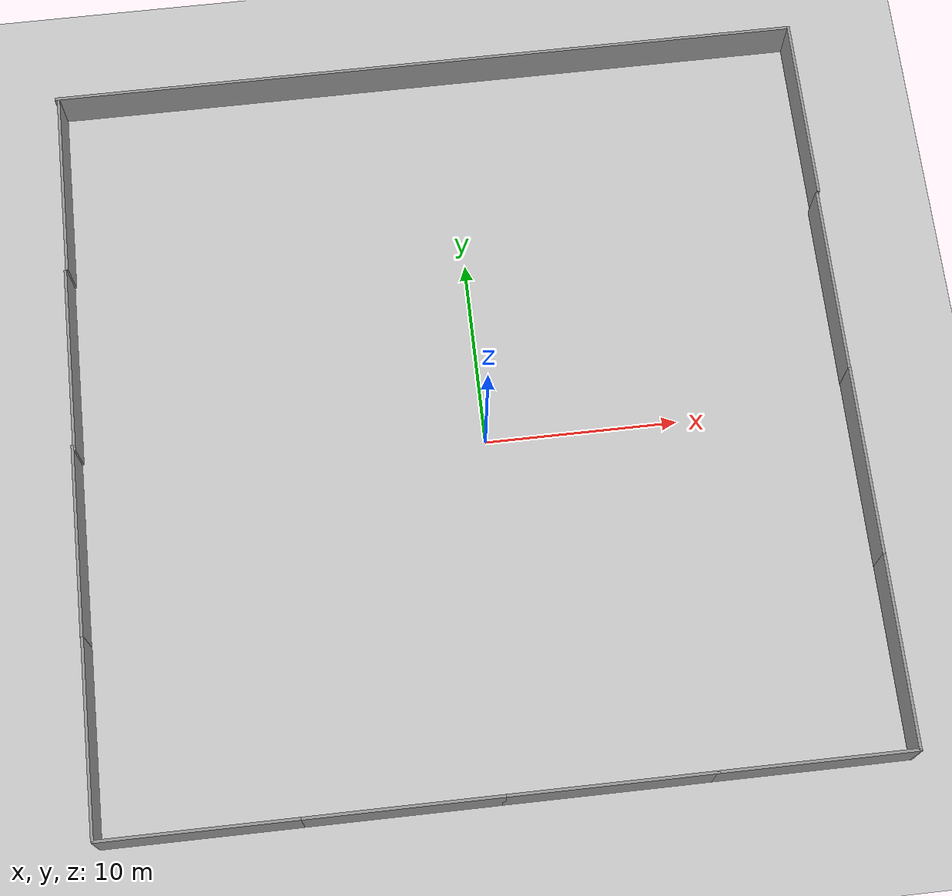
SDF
<sdf version="1.7">
 <world name="default">
  <light name="sun" type="directional">
   <pose>0 0 10 0 -0 0</pose>
   <diffuse>0.8 0.8 0.8 1</diffuse>
   <specular>0.2 0.2 0.2 1</specular>
   <attenuation>
    <range>1000</range>
    <constant>0.9</constant>
    <linear>0.01</linear>
    <quadratic>0.001</quadratic>
   </attenuation>
   <direction>-0.5 0.1 -0.9</direction>
   <spot><inner_angle>0</inner_angle><outer_angle>0</outer_angle><falloff>0</falloff></spot>
  </light>
  <model name="ground_plane">
   <static>1</static>
   <link name="link">
    <collision name="collision">
     <geometry><plane><normal>0 0 1</normal><size>100 100</size></plane></geometry>
     <surface>
      <contact><collide_bitmask>65535</collide_bitmask></contact>
      <friction><ode><mu>100</mu><mu2>50</mu2></ode></friction>
     </surface>
    </collision>
    <visual name="visual">
     <cast_shadows>0</cast_shadows>
     <geometry><plane><normal>0 0 1</normal><size>100 100</size></plane></geometry>
     <material>
      <script><uri>file://media/materials/scripts/gazebo.material</uri><name>Gazebo/Grey</name></script>
     </material>
    </visual>
   </link>
  </model>
  <gravity>0 0 -9.8</gravity>
  <magnetic_field>6e-06 2.3e-05 -4.2e-05</magnetic_field>
  <atmosphere type="adiabatic"/>
  <physics type="ode">
   <max_step_size>0.001</max_step_size>
   <real_time_factor>1</real_time_factor>
   <real_time_update_rate>1000</real_time_update_rate>
  </physics>
  <scene><ambient>0.4 0.4 0.4 1</ambient><background>0.7 0.7 0.7 1</background><shadows>1</shadows></scene>
  <spherical_coordinates>
   <surface_model>EARTH_WGS84</surface_model>
   <latitude_deg>0</latitude_deg>
   <longitude_deg>0</longitude_deg>
   <elevation>0</elevation>
   <heading_deg>0</heading_deg>
  </spherical_coordinates>
  <model name="4x40">
   <pose>-0.999001 1.26572 0 0 -0 0</pose>
   <link name="Wall_11">
    <collision name="Wall_11_Collision">
     <geometry><box><size>10 0.15 2.5</size></box></geometry>
     <pose>0 0 1.25 0 -0 0</pose>
    </collision>
    <visual name="Wall_11_Visual">
     <pose>0 0 1.25 0 -0 0</pose>
     <geometry><box><size>10 0.15 2.5</size></box></geometry>
     <material>
      <script><uri>file://media/materials/scripts/gazebo.material</uri><name>Gazebo/Grey</name></script>
      <ambient>1 1 1 1</ambient>
     </material>
     <meta><layer>0</layer></meta>
    </visual>
    <pose>-5.18516 -19.907 0 0 -0 0</pose>
   </link>
   <link name="Wall_12">
    <collision name="Wall_12_Collision">
     <geometry><box><size>10.5 0.15 2.5</size></box></geometry>
     <pose>0 0 1.25 0 -0 0</pose>
    </collision>
    <visual name="Wall_12_Visual">
     <pose>0 0 1.25 0 -0 0</pose>
     <geometry><box><size>10.5 0.15 2.5</size></box></geometry>
     <material>
      <script><uri>file://media/materials/scripts/gazebo.material</uri><name>Gazebo/Grey</name></script>
      <ambient>1 1 1 1</ambient>
     </material>
     <meta><layer>0</layer></meta>
    </visual>
    <pose>4.91484 -19.907 0 0 -0 0</pose>
   </link>
   <link name="Wall_13">
    <collision name="Wall_13_Collision">
     <geometry><box><size>10 0.15 2.5</size></box></geometry>
     <pose>0 0 1.25 0 -0 0</pose>
    </collision>
    <visual name="Wall_13_Visual">
     <pose>0 0 1.25 0 -0 0</pose>
     <geometry><box><size>10 0.15 2.5</size></box></geometry>
     <material>
      <script><uri>file://media/materials/scripts/gazebo.material</uri><name>Gazebo/Grey</name></script>
      <ambient>1 1 1 1</ambient>
     </material>
     <meta><layer>0</layer></meta>
    </visual>
    <pose>15.0148 -19.907 0 0 -0 0</pose>
   </link>
   <link name="Wall_14">
    <collision name="Wall_14_Collision">
     <geometry><box><size>0.16 0.15 2.5</size></box></geometry>
     <pose>0 0 1.25 0 -0 0</pose>
    </collision>
    <visual name="Wall_14_Visual">
     <pose>0 0 1.25 0 -0 0</pose>
     <geometry><box><size>0.16 0.15 2.5</size></box></geometry>
     <material>
      <script><uri>file://media/materials/scripts/gazebo.material</uri><name>Gazebo/Grey</name></script>
      <ambient>1 1 1 1</ambient>
     </material>
     <meta><layer>0</layer></meta>
    </visual>
    <pose>19.9448 -19.907 0 0 -0 0</pose>
   </link>
   <link name="Wall_19">
    <collision name="Wall_19_Collision">
     <geometry><box><size>10 0.15 2.5</size></box></geometry>
     <pose>0 0 1.25 0 -0 0</pose>
    </collision>
    <visual name="Wall_19_Visual">
     <pose>0 0 1.25 0 -0 0</pose>
     <geometry><box><size>10 0.15 2.5</size></box></geometry>
     <material>
      <script><uri>file://media/materials/scripts/gazebo.material</uri><name>Gazebo/Grey</name></script>
      <ambient>1 1 1 1</ambient>
     </material>
     <meta><layer>0</layer></meta>
    </visual>
    <pose>19.9398 -14.982 0 0 -0 1.5708</pose>
   </link>
   <link name="Wall_22">
    <collision name="Wall_22_Collision">
     <geometry><box><size>10 0.15 2.5</size></box></geometry>
     <pose>0 0 1.25 0 -0 0</pose>
    </collision>
    <visual name="Wall_22_Visual">
     <pose>0 0 1.25 0 -0 0</pose>
     <geometry><box><size>10 0.15 2.5</size></box></geometry>
     <material>
      <script><uri>file://media/materials/scripts/gazebo.material</uri><name>Gazebo/Grey</name></script>
      <ambient>1 1 1 1</ambient>
     </material>
     <meta><layer>0</layer></meta>
    </visual>
    <pose>-20.0033 -14.9009 0 0 -0 1.5708</pose>
   </link>
   <link name="Wall_37">
    <collision name="Wall_37_Collision">
     <geometry><box><size>10 0.15 2.5</size></box></geometry>
     <pose>0 0 1.25 0 -0 0</pose>
    </collision>
    <visual name="Wall_37_Visual">
     <pose>0 0 1.25 0 -0 0</pose>
     <geometry><box><size>10 0.15 2.5</size></box></geometry>
     <material>
      <script><uri>file://media/materials/scripts/gazebo.material</uri><name>Gazebo/Grey</name></script>
      <ambient>1 1 1 1</ambient>
     </material>
     <meta><layer>0</layer></meta>
    </visual>
    <pose>-20.0196 -4.91196 0 0 -0 1.5708</pose>
   </link>
   <link name="Wall_39">
    <collision name="Wall_39_Collision">
     <geometry><box><size>10 0.15 2.5</size></box></geometry>
     <pose>0 0 1.25 0 -0 0</pose>
    </collision>
    <visual name="Wall_39_Visual">
     <pose>0 0 1.25 0 -0 0</pose>
     <geometry><box><size>10 0.15 2.5</size></box></geometry>
     <material>
      <script><uri>file://media/materials/scripts/gazebo.material</uri><name>Gazebo/Grey</name></script>
      <ambient>1 1 1 1</ambient>
     </material>
     <meta><layer>0</layer></meta>
    </visual>
    <pose>-19.9361 4.80178 0 0 -0 -1.5708</pose>
   </link>
   <link name="Wall_42">
    <collision name="Wall_42_Collision">
     <geometry><box><size>10 0.15 2.5</size></box></geometry>
     <pose>0 0 1.25 0 -0 0</pose>
    </collision>
    <visual name="Wall_42_Visual">
     <pose>0 0 1.25 0 -0 0</pose>
     <geometry><box><size>10 0.15 2.5</size></box></geometry>
     <material>
      <script><uri>file://media/materials/scripts/gazebo.material</uri><name>Gazebo/Grey</name></script>
      <ambient>1 1 1 1</ambient>
     </material>
     <meta><layer>0</layer></meta>
    </visual>
    <pose>-19.8524 14.7952 0 0 -0 1.5708</pose>
   </link>
   <link name="Wall_44">
    <collision name="Wall_44_Collision">
     <geometry><box><size>10 0.15 2.5</size></box></geometry>
     <pose>0 0 1.25 0 -0 0</pose>
    </collision>
    <visual name="Wall_44_Visual">
     <pose>0 0 1.25 0 -0 0</pose>
     <geometry><box><size>10 0.15 2.5</size></box></geometry>
     <material>
      <script><uri>file://media/materials/scripts/gazebo.material</uri><name>Gazebo/Grey</name></script>
      <ambient>1 1 1 1</ambient>
     </material>
     <meta><layer>0</layer></meta>
    </visual>
    <pose>20.0196 14.9725 0 0 -0 -1.5708</pose>
   </link>
   <link name="Wall_46">
    <collision name="Wall_46_Collision">
     <geometry><box><size>10 0.15 2.5</size></box></geometry>
     <pose>0 0 1.25 0 -0 0</pose>
    </collision>
    <visual name="Wall_46_Visual">
     <pose>0 0 1.25 0 -0 0</pose>
     <geometry><box><size>10 0.15 2.5</size></box></geometry>
     <material>
      <script><uri>file://media/materials/scripts/gazebo.material</uri><name>Gazebo/Grey</name></script>
      <ambient>1 1 1 1</ambient>
     </material>
     <meta><layer>0</layer></meta>
    </visual>
    <pose>19.9144 4.90457 0 0 -0 -1.5708</pose>
   </link>
   <link name="Wall_48">
    <collision name="Wall_48_Collision">
     <geometry><box><size>10 0.15 2.5</size></box></geometry>
     <pose>0 0 1.25 0 -0 0</pose>
    </collision>
    <visual name="Wall_48_Visual">
     <pose>0 0 1.25 0 -0 0</pose>
     <geometry><box><size>10 0.15 2.5</size></box></geometry>
     <material>
      <script><uri>file://media/materials/scripts/gazebo.material</uri><name>Gazebo/Grey</name></script>
      <ambient>1 1 1 1</ambient>
     </material>
     <meta><layer>0</layer></meta>
    </visual>
    <pose>19.9297 -5.06141 0 0 -0 -1.5708</pose>
   </link>
   <link name="Wall_50">
    <collision name="Wall_50_Collision">
     <geometry><box><size>40 0.15 2.5</size></box></geometry>
     <pose>0 0 1.25 0 -0 0</pose>
    </collision>
    <visual name="Wall_50_Visual">
     <pose>0 0 1.25 0 -0 0</pose>
     <geometry><box><size>40 0.15 2.5</size></box></geometry>
     <material>
      <script><uri>file://media/materials/scripts/gazebo.material</uri><name>Gazebo/Grey</name></script>
      <ambient>1 1 1 1</ambient>
     </material>
     <meta><layer>0</layer></meta>
    </visual>
    <pose>-0.047607 19.907 0 0 -0 3.14159</pose>
   </link>
   <link name="Wall_7">
    <collision name="Wall_7_Collision">
     <geometry><box><size>10 0.15 2.5</size></box></geometry>
     <pose>0 0 1.25 0 -0 0</pose>
    </collision>
    <visual name="Wall_7_Visual">
     <pose>0 0 1.25 0 -0 0</pose>
     <geometry><box><size>10 0.15 2.5</size></box></geometry>
     <material>
      <script><uri>file://media/materials/scripts/gazebo.material</uri><name>Gazebo/Grey</name></script>
      <ambient>1 1 1 1</ambient>
     </material>
     <meta><layer>0</layer></meta>
    </visual>
    <pose>-15.0352 -19.907 0 0 -0 0</pose>
   </link>
   <static>1</static>
  </model>
 </world>
</sdf>
